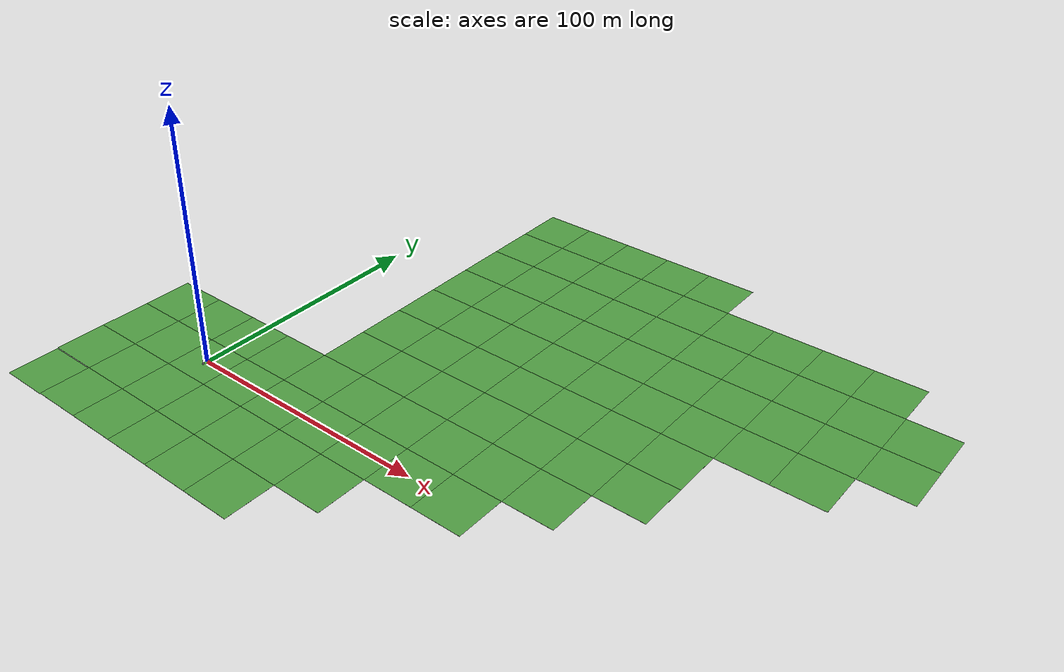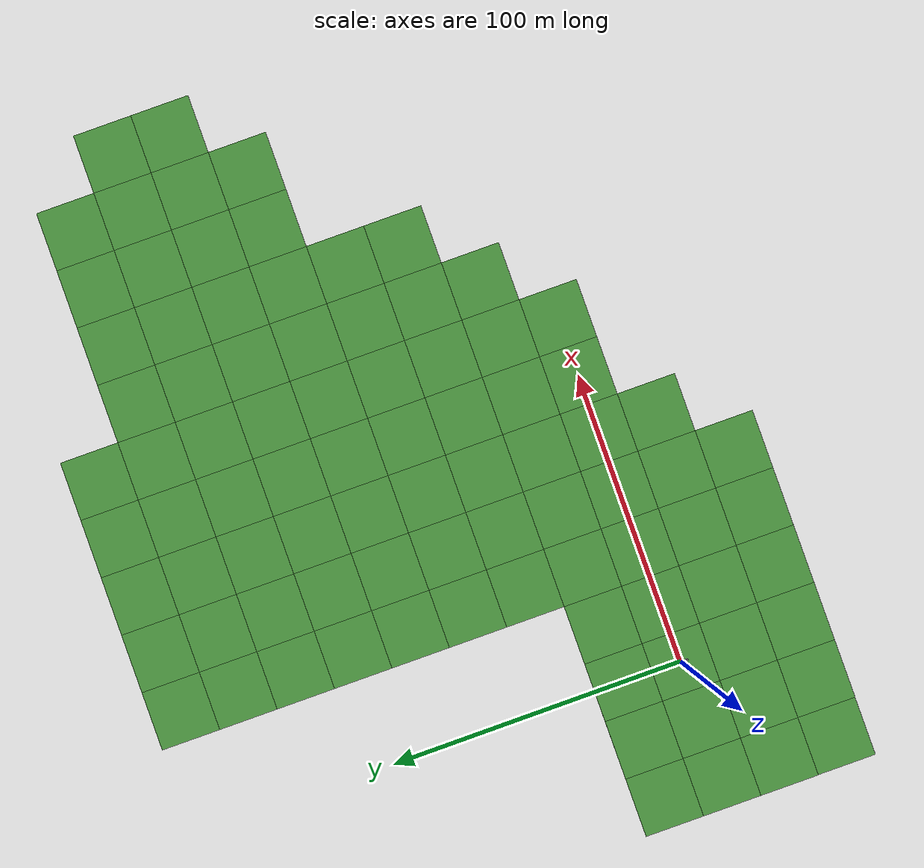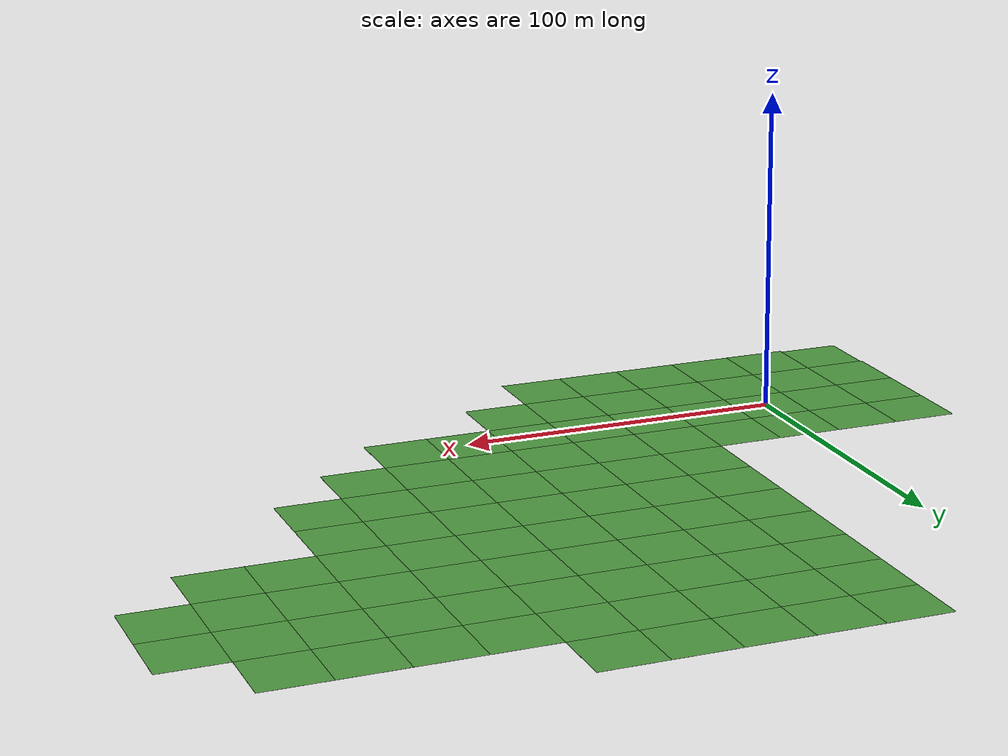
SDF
<sdf version="1.4">
  <world name="default">
      <include>
          <uri>model://construction_barrel</uri>
          <pose>0 -2 0 0 0 0</pose>
      </include>
      <include>
          <uri>model://grass_plane</uri>
          <pose>0 0 0 0 0 0</pose>
      </include>

  </world>
</sdf>

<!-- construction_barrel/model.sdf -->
<sdf version="1.5">
  <model name="Construction Barrel">
    <link name="link">
      <inertial>
        <pose>0 0 0.4 0 0 0</pose>
        <mass>500</mass>
        <inertia>
          <ixx>51.2096</ixx>
          <iyy>51.2096</iyy>
          <izz>25</izz>
          <ixy>0</ixy>
          <ixz>0</ixz>
        </inertia>
      </inertial>
      <collision name="collision">
        <geometry>
          <mesh>
            <uri>model://construction_barrel/meshes/construction_barrel.dae</uri>
          </mesh>
        </geometry>
      </collision>
      <visual name="visual">
        <geometry>
          <mesh>
            <uri>model://construction_barrel/meshes/construction_barrel.dae</uri>
          </mesh>
        </geometry>
      </visual>
    </link>
  </model>
</sdf>

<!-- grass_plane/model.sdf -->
<sdf version='1.4'>
  <model name='grass_plane'>
    <static>true</static>
    <link name='link'>
      <collision name='collision'>
        <geometry>
          <plane>
            <normal>0 0 1</normal>
            <size>500 500</size>
          </plane>
        </geometry>
        <surface>
          <friction>
            <ode>
              <mu>0.5</mu>
              <mu2>.5</mu2>
            </ode>
          </friction>
        </surface>
      </collision>

      <visual name='visual_0'>
        <pose>-40 -40 0 0 0 0</pose>

        <cast_shadows>false</cast_shadows>
        <geometry>
          <plane>
            <normal>0 0 1</normal>
            <size>20 20</size>
          </plane>
        </geometry>
        <material>
          <script>
            <uri>model://grass_plane/materials/scripts</uri>
            <uri>model://grass_plane/materials/textures</uri>
            <name>vrc/grass</name>
          </script>
        </material>
      </visual>

      <visual name='visual_1'>
        <pose>-20 -40 0 0 0 0</pose>

        <cast_shadows>false</cast_shadows>
        <geometry>
          <plane>
            <normal>0 0 1</normal>
            <size>20 20</size>
          </plane>
        </geometry>
        <material>
          <script>
            <uri>model://grass_plane/materials/scripts</uri>
            <uri>model://grass_plane/materials/textures</uri>
            <name>vrc/grass</name>
          </script>
        </material>
      </visual>

      <visual name='visual_2'>
        <pose>0 -40 0 0 0 0</pose>

        <cast_shadows>false</cast_shadows>
        <geometry>
          <plane>
            <normal>0 0 1</normal>
            <size>20 20</size>
          </plane>
        </geometry>
        <material>
          <script>
            <uri>model://grass_plane/materials/scripts</uri>
            <uri>model://grass_plane/materials/textures</uri>
            <name>vrc/grass</name>
          </script>
        </material>
      </visual>

      <visual name='visual_3'>
        <pose>20 -40 0 0 0 0</pose>

        <cast_shadows>false</cast_shadows>
        <geometry>
          <plane>
            <normal>0 0 1</normal>
            <size>20 20</size>
          </plane>
        </geometry>
        <material>
          <script>
            <uri>model://grass_plane/materials/scripts</uri>
            <uri>model://grass_plane/materials/textures</uri>
            <name>vrc/grass</name>
          </script>
        </material>
      </visual>

      <visual name='visual_4'>
        <pose>40 -40 0 0 0 0</pose>

        <cast_shadows>false</cast_shadows>
        <geometry>
          <plane>
            <normal>0 0 1</normal>
            <size>20 20</size>
          </plane>
        </geometry>
        <material>
          <script>
            <uri>model://grass_plane/materials/scripts</uri>
            <uri>model://grass_plane/materials/textures</uri>
            <name>vrc/grass</name>
          </script>
        </material>
      </visual>

      <visual name='visual_5'>
        <pose>60 -40 0 0 0 0</pose>

        <cast_shadows>false</cast_shadows>
        <geometry>
          <plane>
            <normal>0 0 1</normal>
            <size>20 20</size>
          </plane>
        </geometry>
        <material>
          <script>
            <uri>model://grass_plane/materials/scripts</uri>
            <uri>model://grass_plane/materials/textures</uri>
            <name>vrc/grass</name>
          </script>
        </material>
      </visual>

      <visual name='visual_6'>
        <pose>-40 -20 0 0 0 0</pose>

        <cast_shadows>false</cast_shadows>
        <geometry>
          <plane>
            <normal>0 0 1</normal>
            <size>20 20</size>
          </plane>
        </geometry>
        <material>
          <script>
            <uri>model://grass_plane/materials/scripts</uri>
            <uri>model://grass_plane/materials/textures</uri>
            <name>vrc/grass</name>
          </script>
        </material>
      </visual>

      <visual name='visual_7'>
        <pose>-20 -20 0 0 0 0</pose>

        <cast_shadows>false</cast_shadows>
        <geometry>
          <plane>
            <normal>0 0 1</normal>
            <size>20 20</size>
          </plane>
        </geometry>
        <material>
          <script>
            <uri>model://grass_plane/materials/scripts</uri>
            <uri>model://grass_plane/materials/textures</uri>
            <name>vrc/grass</name>
          </script>
        </material>
      </visual>

      <visual name='visual_8'>
        <pose>0 -20 0 0 0 0</pose>

        <cast_shadows>false</cast_shadows>
        <geometry>
          <plane>
            <normal>0 0 1</normal>
            <size>20 20</size>
          </plane>
        </geometry>
        <material>
          <script>
            <uri>model://grass_plane/materials/scripts</uri>
            <uri>model://grass_plane/materials/textures</uri>
            <name>vrc/grass</name>
          </script>
        </material>
      </visual>

      <visual name='visual_9'>
        <pose>20 -20 0 0 0 0</pose>

        <cast_shadows>false</cast_shadows>
        <geometry>
          <plane>
            <normal>0 0 1</normal>
            <size>20 20</size>
          </plane>
        </geometry>
        <material>
          <script>
            <uri>model://grass_plane/materials/scripts</uri>
            <uri>model://grass_plane/materials/textures</uri>
            <name>vrc/grass</name>
          </script>
        </material>
      </visual>

      <visual name='visual_10'>
        <pose>40 -20 0 0 0 0</pose>

        <cast_shadows>false</cast_shadows>
        <geometry>
          <plane>
            <normal>0 0 1</normal>
            <size>20 20</size>
          </plane>
        </geometry>
        <material>
          <script>
            <uri>model://grass_plane/materials/scripts</uri>
            <uri>model://grass_plane/materials/textures</uri>
            <name>vrc/grass</name>
          </script>
        </material>
      </visual>

      <visual name='visual_11'>
        <pose>60 -20 0 0 0 0</pose>

        <cast_shadows>false</cast_shadows>
        <geometry>
          <plane>
            <normal>0 0 1</normal>
            <size>20 20</size>
          </plane>
        </geometry>
        <material>
          <script>
            <uri>model://grass_plane/materials/scripts</uri>
            <uri>model://grass_plane/materials/textures</uri>
            <name>vrc/grass</name>
          </script>
        </material>
      </visual>

      <visual name='visual_12'>
        <pose>80 -20 0 0 0 0</pose>

        <cast_shadows>false</cast_shadows>
        <geometry>
          <plane>
            <normal>0 0 1</normal>
            <size>20 20</size>
          </plane>
        </geometry>
        <material>
          <script>
            <uri>model://grass_plane/materials/scripts</uri>
            <uri>model://grass_plane/materials/textures</uri>
            <name>vrc/grass</name>
          </script>
        </material>
      </visual>

      <visual name='visual_13'>
        <pose>-40 0 0 0 0 0</pose>

        <cast_shadows>false</cast_shadows>
        <geometry>
          <plane>
            <normal>0 0 1</normal>
            <size>20 20</size>
          </plane>
        </geometry>
        <material>
          <script>
            <uri>model://grass_plane/materials/scripts</uri>
            <uri>model://grass_plane/materials/textures</uri>
            <name>vrc/grass</name>
          </script>
        </material>
      </visual>

      <visual name='visual_14'>
        <pose>-20 0 0 0 0 0</pose>

        <cast_shadows>false</cast_shadows>
        <geometry>
          <plane>
            <normal>0 0 1</normal>
            <size>20 20</size>
          </plane>
        </geometry>
        <material>
          <script>
            <uri>model://grass_plane/materials/scripts</uri>
            <uri>model://grass_plane/materials/textures</uri>
            <name>vrc/grass</name>
          </script>
        </material>
      </visual>

      <visual name='visual_15'>
        <pose>0 0 0 0 0 0</pose>

        <cast_shadows>false</cast_shadows>
        <geometry>
          <plane>
            <normal>0 0 1</normal>
            <size>20 20</size>
          </plane>
        </geometry>
        <material>
          <script>
            <uri>model://grass_plane/materials/scripts</uri>
            <uri>model://grass_plane/materials/textures</uri>
            <name>vrc/grass</name>
          </script>
        </material>
      </visual>

      <visual name='visual_16'>
        <pose>20 0 0 0 0 0</pose>

        <cast_shadows>false</cast_shadows>
        <geometry>
          <plane>
            <normal>0 0 1</normal>
            <size>20 20</size>
          </plane>
        </geometry>
        <material>
          <script>
            <uri>model://grass_plane/materials/scripts</uri>
            <uri>model://grass_plane/materials/textures</uri>
            <name>vrc/grass</name>
          </script>
        </material>
      </visual>

      <visual name='visual_17'>
        <pose>40 0 0 0 0 0</pose>

        <cast_shadows>false</cast_shadows>
        <geometry>
          <plane>
            <normal>0 0 1</normal>
            <size>20 20</size>
          </plane>
        </geometry>
        <material>
          <script>
            <uri>model://grass_plane/materials/scripts</uri>
            <uri>model://grass_plane/materials/textures</uri>
            <name>vrc/grass</name>
          </script>
        </material>
      </visual>

      <visual name='visual_18'>
        <pose>60 0 0 0 0 0</pose>

        <cast_shadows>false</cast_shadows>
        <geometry>
          <plane>
            <normal>0 0 1</normal>
            <size>20 20</size>
          </plane>
        </geometry>
        <material>
          <script>
            <uri>model://grass_plane/materials/scripts</uri>
            <uri>model://grass_plane/materials/textures</uri>
            <name>vrc/grass</name>
          </script>
        </material>
      </visual>

      <visual name='visual_19'>
        <pose>80 0 0 0 0 0</pose>

        <cast_shadows>false</cast_shadows>
        <geometry>
          <plane>
            <normal>0 0 1</normal>
            <size>20 20</size>
          </plane>
        </geometry>
        <material>
          <script>
            <uri>model://grass_plane/materials/scripts</uri>
            <uri>model://grass_plane/materials/textures</uri>
            <name>vrc/grass</name>
          </script>
        </material>
      </visual>

      <visual name='visual_20'>
        <pose>100 0 0 0 0 0</pose>

        <cast_shadows>false</cast_shadows>
        <geometry>
          <plane>
            <normal>0 0 1</normal>
            <size>20 20</size>
          </plane>
        </geometry>
        <material>
          <script>
            <uri>model://grass_plane/materials/scripts</uri>
            <uri>model://grass_plane/materials/textures</uri>
            <name>vrc/grass</name>
          </script>
        </material>
      </visual>

      <visual name='visual_21'>
        <pose>120 0 0 0 0 0</pose>

        <cast_shadows>false</cast_shadows>
        <geometry>
          <plane>
            <normal>0 0 1</normal>
            <size>20 20</size>
          </plane>
        </geometry>
        <material>
          <script>
            <uri>model://grass_plane/materials/scripts</uri>
            <uri>model://grass_plane/materials/textures</uri>
            <name>vrc/grass</name>
          </script>
        </material>
      </visual>

      <visual name='visual_22'>
        <pose>-40 20 0 0 0 0</pose>

        <cast_shadows>false</cast_shadows>
        <geometry>
          <plane>
            <normal>0 0 1</normal>
            <size>20 20</size>
          </plane>
        </geometry>
        <material>
          <script>
            <uri>model://grass_plane/materials/scripts</uri>
            <uri>model://grass_plane/materials/textures</uri>
            <name>vrc/grass</name>
          </script>
        </material>
      </visual>

      <visual name='visual_23'>
        <pose>-20 20 0 0 0 0</pose>

        <cast_shadows>false</cast_shadows>
        <geometry>
          <plane>
            <normal>0 0 1</normal>
            <size>20 20</size>
          </plane>
        </geometry>
        <material>
          <script>
            <uri>model://grass_plane/materials/scripts</uri>
            <uri>model://grass_plane/materials/textures</uri>
            <name>vrc/grass</name>
          </script>
        </material>
      </visual>

      <visual name='visual_24'>
        <pose>0 20 0 0 0 0</pose>

        <cast_shadows>false</cast_shadows>
        <geometry>
          <plane>
            <normal>0 0 1</normal>
            <size>20 20</size>
          </plane>
        </geometry>
        <material>
          <script>
            <uri>model://grass_plane/materials/scripts</uri>
            <uri>model://grass_plane/materials/textures</uri>
            <name>vrc/grass</name>
          </script>
        </material>
      </visual>

      <visual name='visual_25'>
        <pose>20 20 0 0 0 0</pose>

        <cast_shadows>false</cast_shadows>
        <geometry>
          <plane>
            <normal>0 0 1</normal>
            <size>20 20</size>
          </plane>
        </geometry>
        <material>
          <script>
            <uri>model://grass_plane/materials/scripts</uri>
            <uri>model://grass_plane/materials/textures</uri>
            <name>vrc/grass</name>
          </script>
        </material>
      </visual>

      <visual name='visual_26'>
        <pose>40 20 0 0 0 0</pose>

        <cast_shadows>false</cast_shadows>
        <geometry>
          <plane>
            <normal>0 0 1</normal>
            <size>20 20</size>
          </plane>
        </geometry>
        <material>
          <script>
            <uri>model://grass_plane/materials/scripts</uri>
            <uri>model://grass_plane/materials/textures</uri>
            <name>vrc/grass</name>
          </script>
        </material>
      </visual>

      <visual name='visual_27'>
        <pose>60 20 0 0 0 0</pose>

        <cast_shadows>false</cast_shadows>
        <geometry>
          <plane>
            <normal>0 0 1</normal>
            <size>20 20</size>
          </plane>
        </geometry>
        <material>
          <script>
            <uri>model://grass_plane/materials/scripts</uri>
            <uri>model://grass_plane/materials/textures</uri>
            <name>vrc/grass</name>
          </script>
        </material>
      </visual>

      <visual name='visual_28'>
        <pose>80 20 0 0 0 0</pose>

        <cast_shadows>false</cast_shadows>
        <geometry>
          <plane>
            <normal>0 0 1</normal>
            <size>20 20</size>
          </plane>
        </geometry>
        <material>
          <script>
            <uri>model://grass_plane/materials/scripts</uri>
            <uri>model://grass_plane/materials/textures</uri>
            <name>vrc/grass</name>
          </script>
        </material>
      </visual>

      <visual name='visual_29'>
        <pose>100 20 0 0 0 0</pose>

        <cast_shadows>false</cast_shadows>
        <geometry>
          <plane>
            <normal>0 0 1</normal>
            <size>20 20</size>
          </plane>
        </geometry>
        <material>
          <script>
            <uri>model://grass_plane/materials/scripts</uri>
            <uri>model://grass_plane/materials/textures</uri>
            <name>vrc/grass</name>
          </script>
        </material>
      </visual>

      <visual name='visual_30'>
        <pose>120 20 0 0 0 0</pose>

        <cast_shadows>false</cast_shadows>
        <geometry>
          <plane>
            <normal>0 0 1</normal>
            <size>20 20</size>
          </plane>
        </geometry>
        <material>
          <script>
            <uri>model://grass_plane/materials/scripts</uri>
            <uri>model://grass_plane/materials/textures</uri>
            <name>vrc/grass</name>
          </script>
        </material>
      </visual>

      <visual name='visual_31'>
        <pose>140 20 0 0 0 0</pose>

        <cast_shadows>false</cast_shadows>
        <geometry>
          <plane>
            <normal>0 0 1</normal>
            <size>20 20</size>
          </plane>
        </geometry>
        <material>
          <script>
            <uri>model://grass_plane/materials/scripts</uri>
            <uri>model://grass_plane/materials/textures</uri>
            <name>vrc/grass</name>
          </script>
        </material>
      </visual>

      <visual name='visual_32'>
        <pose>40 40 0 0 0 0</pose>

        <cast_shadows>false</cast_shadows>
        <geometry>
          <plane>
            <normal>0 0 1</normal>
            <size>20 20</size>
          </plane>
        </geometry>
        <material>
          <script>
            <uri>model://grass_plane/materials/scripts</uri>
            <uri>model://grass_plane/materials/textures</uri>
            <name>vrc/grass</name>
          </script>
        </material>
      </visual>

      <visual name='visual_33'>
        <pose>60 40 0 0 0 0</pose>

        <cast_shadows>false</cast_shadows>
        <geometry>
          <plane>
            <normal>0 0 1</normal>
            <size>20 20</size>
          </plane>
        </geometry>
        <material>
          <script>
            <uri>model://grass_plane/materials/scripts</uri>
            <uri>model://grass_plane/materials/textures</uri>
            <name>vrc/grass</name>
          </script>
        </material>
      </visual>

      <visual name='visual_34'>
        <pose>80 40 0 0 0 0</pose>

        <cast_shadows>false</cast_shadows>
        <geometry>
          <plane>
            <normal>0 0 1</normal>
            <size>20 20</size>
          </plane>
        </geometry>
        <material>
          <script>
            <uri>model://grass_plane/materials/scripts</uri>
            <uri>model://grass_plane/materials/textures</uri>
            <name>vrc/grass</name>
          </script>
        </material>
      </visual>

      <visual name='visual_35'>
        <pose>100 40 0 0 0 0</pose>

        <cast_shadows>false</cast_shadows>
        <geometry>
          <plane>
            <normal>0 0 1</normal>
            <size>20 20</size>
          </plane>
        </geometry>
        <material>
          <script>
            <uri>model://grass_plane/materials/scripts</uri>
            <uri>model://grass_plane/materials/textures</uri>
            <name>vrc/grass</name>
          </script>
        </material>
      </visual>

      <visual name='visual_36'>
        <pose>120 40 0 0 0 0</pose>

        <cast_shadows>false</cast_shadows>
        <geometry>
          <plane>
            <normal>0 0 1</normal>
            <size>20 20</size>
          </plane>
        </geometry>
        <material>
          <script>
            <uri>model://grass_plane/materials/scripts</uri>
            <uri>model://grass_plane/materials/textures</uri>
            <name>vrc/grass</name>
          </script>
        </material>
      </visual>

      <visual name='visual_37'>
        <pose>140 40 0 0 0 0</pose>

        <cast_shadows>false</cast_shadows>
        <geometry>
          <plane>
            <normal>0 0 1</normal>
            <size>20 20</size>
          </plane>
        </geometry>
        <material>
          <script>
            <uri>model://grass_plane/materials/scripts</uri>
            <uri>model://grass_plane/materials/textures</uri>
            <name>vrc/grass</name>
          </script>
        </material>
      </visual>

      <visual name='visual_38'>
        <pose>160 40 0 0 0 0</pose>

        <cast_shadows>false</cast_shadows>
        <geometry>
          <plane>
            <normal>0 0 1</normal>
            <size>20 20</size>
          </plane>
        </geometry>
        <material>
          <script>
            <uri>model://grass_plane/materials/scripts</uri>
            <uri>model://grass_plane/materials/textures</uri>
            <name>vrc/grass</name>
          </script>
        </material>
      </visual>

      <visual name='visual_39'>
        <pose>40 60 0 0 0 0</pose>

        <cast_shadows>false</cast_shadows>
        <geometry>
          <plane>
            <normal>0 0 1</normal>
            <size>20 20</size>
          </plane>
        </geometry>
        <material>
          <script>
            <uri>model://grass_plane/materials/scripts</uri>
            <uri>model://grass_plane/materials/textures</uri>
            <name>vrc/grass</name>
          </script>
        </material>
      </visual>

      <visual name='visual_40'>
        <pose>60 60 0 0 0 0</pose>

        <cast_shadows>false</cast_shadows>
        <geometry>
          <plane>
            <normal>0 0 1</normal>
            <size>20 20</size>
          </plane>
        </geometry>
        <material>
          <script>
            <uri>model://grass_plane/materials/scripts</uri>
            <uri>model://grass_plane/materials/textures</uri>
            <name>vrc/grass</name>
          </script>
        </material>
      </visual>

      <visual name='visual_41'>
        <pose>80 60 0 0 0 0</pose>

        <cast_shadows>false</cast_shadows>
        <geometry>
          <plane>
            <normal>0 0 1</normal>
            <size>20 20</size>
          </plane>
        </geometry>
        <material>
          <script>
            <uri>model://grass_plane/materials/scripts</uri>
            <uri>model://grass_plane/materials/textures</uri>
            <name>vrc/grass</name>
          </script>
        </material>
      </visual>

      <visual name='visual_42'>
        <pose>100 60 0 0 0 0</pose>

        <cast_shadows>false</cast_shadows>
        <geometry>
          <plane>
            <normal>0 0 1</normal>
            <size>20 20</size>
          </plane>
        </geometry>
        <material>
          <script>
            <uri>model://grass_plane/materials/scripts</uri>
            <uri>model://grass_plane/materials/textures</uri>
            <name>vrc/grass</name>
          </script>
        </material>
      </visual>

      <visual name='visual_43'>
        <pose>120 60 0 0 0 0</pose>

        <cast_shadows>false</cast_shadows>
        <geometry>
          <plane>
            <normal>0 0 1</normal>
            <size>20 20</size>
          </plane>
        </geometry>
        <material>
          <script>
            <uri>model://grass_plane/materials/scripts</uri>
            <uri>model://grass_plane/materials/textures</uri>
            <name>vrc/grass</name>
          </script>
        </material>
      </visual>

      <visual name='visual_44'>
        <pose>140 60 0 0 0 0</pose>

        <cast_shadows>false</cast_shadows>
        <geometry>
          <plane>
            <normal>0 0 1</normal>
            <size>20 20</size>
          </plane>
        </geometry>
        <material>
          <script>
            <uri>model://grass_plane/materials/scripts</uri>
            <uri>model://grass_plane/materials/textures</uri>
            <name>vrc/grass</name>
          </script>
        </material>
      </visual>

      <visual name='visual_45'>
        <pose>160 60 0 0 0 0</pose>

        <cast_shadows>false</cast_shadows>
        <geometry>
          <plane>
            <normal>0 0 1</normal>
            <size>20 20</size>
          </plane>
        </geometry>
        <material>
          <script>
            <uri>model://grass_plane/materials/scripts</uri>
            <uri>model://grass_plane/materials/textures</uri>
            <name>vrc/grass</name>
          </script>
        </material>
      </visual>

      <visual name='visual_46'>
        <pose>40 80 0 0 0 0</pose>

        <cast_shadows>false</cast_shadows>
        <geometry>
          <plane>
            <normal>0 0 1</normal>
            <size>20 20</size>
          </plane>
        </geometry>
        <material>
          <script>
            <uri>model://grass_plane/materials/scripts</uri>
            <uri>model://grass_plane/materials/textures</uri>
            <name>vrc/grass</name>
          </script>
        </material>
      </visual>

      <visual name='visual_47'>
        <pose>60 80 0 0 0 0</pose>

        <cast_shadows>false</cast_shadows>
        <geometry>
          <plane>
            <normal>0 0 1</normal>
            <size>20 20</size>
          </plane>
        </geometry>
        <material>
          <script>
            <uri>model://grass_plane/materials/scripts</uri>
            <uri>model://grass_plane/materials/textures</uri>
            <name>vrc/grass</name>
          </script>
        </material>
      </visual>

      <visual name='visual_48'>
        <pose>80 80 0 0 0 0</pose>

        <cast_shadows>false</cast_shadows>
        <geometry>
          <plane>
            <normal>0 0 1</normal>
            <size>20 20</size>
          </plane>
        </geometry>
        <material>
          <script>
            <uri>model://grass_plane/materials/scripts</uri>
            <uri>model://grass_plane/materials/textures</uri>
            <name>vrc/grass</name>
          </script>
        </material>
      </visual>

      <visual name='visual_49'>
        <pose>100 80 0 0 0 0</pose>

        <cast_shadows>false</cast_shadows>
        <geometry>
          <plane>
            <normal>0 0 1</normal>
            <size>20 20</size>
          </plane>
        </geometry>
        <material>
          <script>
            <uri>model://grass_plane/materials/scripts</uri>
            <uri>model://grass_plane/materials/textures</uri>
            <name>vrc/grass</name>
          </script>
        </material>
      </visual>

      <visual name='visual_50'>
        <pose>120 80 0 0 0 0</pose>

        <cast_shadows>false</cast_shadows>
        <geometry>
          <plane>
            <normal>0 0 1</normal>
            <size>20 20</size>
          </plane>
        </geometry>
        <material>
          <script>
            <uri>model://grass_plane/materials/scripts</uri>
            <uri>model://grass_plane/materials/textures</uri>
            <name>vrc/grass</name>
          </script>
        </material>
      </visual>

      <visual name='visual_51'>
        <pose>140 80 0 0 0 0</pose>

        <cast_shadows>false</cast_shadows>
        <geometry>
          <plane>
            <normal>0 0 1</normal>
            <size>20 20</size>
          </plane>
        </geometry>
        <material>
          <script>
            <uri>model://grass_plane/materials/scripts</uri>
            <uri>model://grass_plane/materials/textures</uri>
            <name>vrc/grass</name>
          </script>
        </material>
      </visual>

      <visual name='visual_52'>
        <pose>160 80 0 0 0 0</pose>

        <cast_shadows>false</cast_shadows>
        <geometry>
          <plane>
            <normal>0 0 1</normal>
            <size>20 20</size>
          </plane>
        </geometry>
        <material>
          <script>
            <uri>model://grass_plane/materials/scripts</uri>
            <uri>model://grass_plane/materials/textures</uri>
            <name>vrc/grass</name>
          </script>
        </material>
      </visual>

      <visual name='visual_53'>
        <pose>180 80 0 0 0 0</pose>

        <cast_shadows>false</cast_shadows>
        <geometry>
          <plane>
            <normal>0 0 1</normal>
            <size>20 20</size>
          </plane>
        </geometry>
        <material>
          <script>
            <uri>model://grass_plane/materials/scripts</uri>
            <uri>model://grass_plane/materials/textures</uri>
            <name>vrc/grass</name>
          </script>
        </material>
      </visual>

      <visual name='visual_54'>
        <pose>200 80 0 0 0 0</pose>

        <cast_shadows>false</cast_shadows>
        <geometry>
          <plane>
            <normal>0 0 1</normal>
            <size>20 20</size>
          </plane>
        </geometry>
        <material>
          <script>
            <uri>model://grass_plane/materials/scripts</uri>
            <uri>model://grass_plane/materials/textures</uri>
            <name>vrc/grass</name>
          </script>
        </material>
      </visual>

      <visual name='visual_55'>
        <pose>40 100 0 0 0 0</pose>

        <cast_shadows>false</cast_shadows>
        <geometry>
          <plane>
            <normal>0 0 1</normal>
            <size>20 20</size>
          </plane>
        </geometry>
        <material>
          <script>
            <uri>model://grass_plane/materials/scripts</uri>
            <uri>model://grass_plane/materials/textures</uri>
            <name>vrc/grass</name>
          </script>
        </material>
      </visual>

      <visual name='visual_56'>
        <pose>60 100 0 0 0 0</pose>

        <cast_shadows>false</cast_shadows>
        <geometry>
          <plane>
            <normal>0 0 1</normal>
            <size>20 20</size>
          </plane>
        </geometry>
        <material>
          <script>
            <uri>model://grass_plane/materials/scripts</uri>
            <uri>model://grass_plane/materials/textures</uri>
            <name>vrc/grass</name>
          </script>
        </material>
      </visual>

      <visual name='visual_57'>
        <pose>80 100 0 0 0 0</pose>

        <cast_shadows>false</cast_shadows>
        <geometry>
          <plane>
            <normal>0 0 1</normal>
            <size>20 20</size>
          </plane>
        </geometry>
        <material>
          <script>
            <uri>model://grass_plane/materials/scripts</uri>
            <uri>model://grass_plane/materials/textures</uri>
            <name>vrc/grass</name>
          </script>
        </material>
      </visual>

      <visual name='visual_58'>
        <pose>100 100 0 0 0 0</pose>

        <cast_shadows>false</cast_shadows>
        <geometry>
          <plane>
            <normal>0 0 1</normal>
            <size>20 20</size>
          </plane>
        </geometry>
        <material>
          <script>
            <uri>model://grass_plane/materials/scripts</uri>
            <uri>model://grass_plane/materials/textures</uri>
            <name>vrc/grass</name>
          </script>
        </material>
      </visual>

      <visual name='visual_59'>
        <pose>120 100 0 0 0 0</pose>

        <cast_shadows>false</cast_shadows>
        <geometry>
          <plane>
            <normal>0 0 1</normal>
            <size>20 20</size>
          </plane>
        </geometry>
        <material>
          <script>
            <uri>model://grass_plane/materials/scripts</uri>
            <uri>model://grass_plane/materials/textures</uri>
            <name>vrc/grass</name>
          </script>
        </material>
      </visual>

      <visual name='visual_60'>
        <pose>140 100 0 0 0 0</pose>

        <cast_shadows>false</cast_shadows>
        <geometry>
          <plane>
            <normal>0 0 1</normal>
            <size>20 20</size>
          </plane>
        </geometry>
        <material>
          <script>
            <uri>model://grass_plane/materials/scripts</uri>
            <uri>model://grass_plane/materials/textures</uri>
            <name>vrc/grass</name>
          </script>
        </material>
      </visual>

      <visual name='visual_61'>
        <pose>160 100 0 0 0 0</pose>

        <cast_shadows>false</cast_shadows>
        <geometry>
          <plane>
            <normal>0 0 1</normal>
            <size>20 20</size>
          </plane>
        </geometry>
        <material>
          <script>
            <uri>model://grass_plane/materials/scripts</uri>
            <uri>model://grass_plane/materials/textures</uri>
            <name>vrc/grass</name>
          </script>
        </material>
      </visual>

      <visual name='visual_62'>
        <pose>180 100 0 0 0 0</pose>

        <cast_shadows>false</cast_shadows>
        <geometry>
          <plane>
            <normal>0 0 1</normal>
            <size>20 20</size>
          </plane>
        </geometry>
        <material>
          <script>
            <uri>model://grass_plane/materials/scripts</uri>
            <uri>model://grass_plane/materials/textures</uri>
            <name>vrc/grass</name>
          </script>
        </material>
      </visual>

      <visual name='visual_63'>
        <pose>200 100 0 0 0 0</pose>

        <cast_shadows>false</cast_shadows>
        <geometry>
          <plane>
            <normal>0 0 1</normal>
            <size>20 20</size>
          </plane>
        </geometry>
        <material>
          <script>
            <uri>model://grass_plane/materials/scripts</uri>
            <uri>model://grass_plane/materials/textures</uri>
            <name>vrc/grass</name>
          </script>
        </material>
      </visual>

      <visual name='visual_63a'>
        <pose>220 100 0 0 0 0</pose>

        <cast_shadows>false</cast_shadows>
        <geometry>
          <plane>
            <normal>0 0 1</normal>
            <size>20 20</size>
          </plane>
        </geometry>
        <material>
          <script>
            <uri>model://grass_plane/materials/scripts</uri>
            <uri>model://grass_plane/materials/textures</uri>
            <name>vrc/grass</name>
          </script>
        </material>
      </visual>

      <visual name='visual_64'>
        <pose>40 120 0 0 0 0</pose>

        <cast_shadows>false</cast_shadows>
        <geometry>
          <plane>
            <normal>0 0 1</normal>
            <size>20 20</size>
          </plane>
        </geometry>
        <material>
          <script>
            <uri>model://grass_plane/materials/scripts</uri>
            <uri>model://grass_plane/materials/textures</uri>
            <name>vrc/grass</name>
          </script>
        </material>
      </visual>

      <visual name='visual_65'>
        <pose>60 120 0 0 0 0</pose>

        <cast_shadows>false</cast_shadows>
        <geometry>
          <plane>
            <normal>0 0 1</normal>
            <size>20 20</size>
          </plane>
        </geometry>
        <material>
          <script>
            <uri>model://grass_plane/materials/scripts</uri>
            <uri>model://grass_plane/materials/textures</uri>
            <name>vrc/grass</name>
          </script>
        </material>
      </visual>

      <visual name='visual_66'>
        <pose>80 120 0 0 0 0</pose>

        <cast_shadows>false</cast_shadows>
        <geometry>
          <plane>
            <normal>0 0 1</normal>
            <size>20 20</size>
          </plane>
        </geometry>
        <material>
          <script>
            <uri>model://grass_plane/materials/scripts</uri>
            <uri>model://grass_plane/materials/textures</uri>
            <name>vrc/grass</name>
          </script>
        </material>
      </visual>

      <visual name='visual_67'>
        <pose>100 120 0 0 0 0</pose>

        <cast_shadows>false</cast_shadows>
        <geometry>
          <plane>
            <normal>0 0 1</normal>
            <size>20 20</size>
          </plane>
        </geometry>
        <material>
          <script>
            <uri>model://grass_plane/materials/scripts</uri>
            <uri>model://grass_plane/materials/textures</uri>
            <name>vrc/grass</name>
          </script>
        </material>
      </visual>

      <visual name='visual_68'>
        <pose>120 120 0 0 0 0</pose>

        <cast_shadows>false</cast_shadows>
        <geometry>
          <plane>
            <normal>0 0 1</normal>
            <size>20 20</size>
          </plane>
        </geometry>
        <material>
          <script>
            <uri>model://grass_plane/materials/scripts</uri>
            <uri>model://grass_plane/materials/textures</uri>
            <name>vrc/grass</name>
          </script>
        </material>
      </visual>

      <visual name='visual_69'>
        <pose>140 120 0 0 0 0</pose>

        <cast_shadows>false</cast_shadows>
        <geometry>
          <plane>
            <normal>0 0 1</normal>
            <size>20 20</size>
          </plane>
        </geometry>
        <material>
          <script>
            <uri>model://grass_plane/materials/scripts</uri>
            <uri>model://grass_plane/materials/textures</uri>
            <name>vrc/grass</name>
          </script>
        </material>
      </visual>

      <visual name='visual_70'>
        <pose>160 120 0 0 0 0</pose>

        <cast_shadows>false</cast_shadows>
        <geometry>
          <plane>
            <normal>0 0 1</normal>
            <size>20 20</size>
          </plane>
        </geometry>
        <material>
          <script>
            <uri>model://grass_plane/materials/scripts</uri>
            <uri>model://grass_plane/materials/textures</uri>
            <name>vrc/grass</name>
          </script>
        </material>
      </visual>

      <visual name='visual_71'>
        <pose>180 120 0 0 0 0</pose>

        <cast_shadows>false</cast_shadows>
        <geometry>
          <plane>
            <normal>0 0 1</normal>
            <size>20 20</size>
          </plane>
        </geometry>
        <material>
          <script>
            <uri>model://grass_plane/materials/scripts</uri>
            <uri>model://grass_plane/materials/textures</uri>
            <name>vrc/grass</name>
          </script>
        </material>
      </visual>

      <visual name='visual_72'>
        <pose>200 120 0 0 0 0</pose>

        <cast_shadows>false</cast_shadows>
        <geometry>
          <plane>
            <normal>0 0 1</normal>
            <size>20 20</size>
          </plane>
        </geometry>
        <material>
          <script>
            <uri>model://grass_plane/materials/scripts</uri>
            <uri>model://grass_plane/materials/textures</uri>
            <name>vrc/grass</name>
          </script>
        </material>
      </visual>

      <visual name='visual_72a'>
        <pose>220 120 0 0 0 0</pose>

        <cast_shadows>false</cast_shadows>
        <geometry>
          <plane>
            <normal>0 0 1</normal>
            <size>20 20</size>
          </plane>
        </geometry>
        <material>
          <script>
            <uri>model://grass_plane/materials/scripts</uri>
            <uri>model://grass_plane/materials/textures</uri>
            <name>vrc/grass</name>
          </script>
        </material>
      </visual>

      <visual name='visual_73'>
        <pose>40 140 0 0 0 0</pose>

        <cast_shadows>false</cast_shadows>
        <geometry>
          <plane>
            <normal>0 0 1</normal>
            <size>20 20</size>
          </plane>
        </geometry>
        <material>
          <script>
            <uri>model://grass_plane/materials/scripts</uri>
            <uri>model://grass_plane/materials/textures</uri>
            <name>vrc/grass</name>
          </script>
        </material>
      </visual>

      <visual name='visual_74'>
        <pose>60 140 0 0 0 0</pose>

        <cast_shadows>false</cast_shadows>
        <geometry>
          <plane>
            <normal>0 0 1</normal>
            <size>20 20</size>
          </plane>
        </geometry>
        <material>
          <script>
            <uri>model://grass_plane/materials/scripts</uri>
            <uri>model://grass_plane/materials/textures</uri>
            <name>vrc/grass</name>
          </script>
        </material>
      </visual>

      <visual name='visual_75'>
        <pose>80 140 0 0 0 0</pose>

        <cast_shadows>false</cast_shadows>
        <geometry>
          <plane>
            <normal>0 0 1</normal>
            <size>20 20</size>
          </plane>
        </geometry>
        <material>
          <script>
            <uri>model://grass_plane/materials/scripts</uri>
            <uri>model://grass_plane/materials/textures</uri>
            <name>vrc/grass</name>
          </script>
        </material>
      </visual>

      <visual name='visual_76'>
        <pose>100 140 0 0 0 0</pose>

        <cast_shadows>false</cast_shadows>
        <geometry>
          <plane>
            <normal>0 0 1</normal>
            <size>20 20</size>
          </plane>
        </geometry>
        <material>
          <script>
            <uri>model://grass_plane/materials/scripts</uri>
            <uri>model://grass_plane/materials/textures</uri>
            <name>vrc/grass</name>
          </script>
        </material>
      </visual>

      <visual name='visual_77'>
        <pose>120 140 0 0 0 0</pose>

        <cast_shadows>false</cast_shadows>
        <geometry>
          <plane>
            <normal>0 0 1</normal>
            <size>20 20</size>
          </plane>
        </geometry>
        <material>
          <script>
            <uri>model://grass_plane/materials/scripts</uri>
            <uri>model://grass_plane/materials/textures</uri>
            <name>vrc/grass</name>
          </script>
        </material>
      </visual>

      <visual name='visual_78'>
        <pose>140 140 0 0 0 0</pose>

        <cast_shadows>false</cast_shadows>
        <geometry>
          <plane>
            <normal>0 0 1</normal>
            <size>20 20</size>
          </plane>
        </geometry>
        <material>
          <script>
            <uri>model://grass_plane/materials/scripts</uri>
            <uri>model://grass_plane/materials/textures</uri>
            <name>vrc/grass</name>
          </script>
        </material>
      </visual>

      <visual name='visual_79'>
        <pose>160 140 0 0 0 0</pose>

        <cast_shadows>false</cast_shadows>
        <geometry>
          <plane>
            <normal>0 0 1</normal>
            <size>20 20</size>
          </plane>
        </geometry>
        <material>
          <script>
            <uri>model://grass_plane/materials/scripts</uri>
            <uri>model://grass_plane/materials/textures</uri>
            <name>vrc/grass</name>
          </script>
        </material>
      </visual>

      <visual name='visual_80'>
        <pose>180 140 0 0 0 0</pose>

        <cast_shadows>false</cast_shadows>
        <geometry>
          <plane>
            <normal>0 0 1</normal>
            <size>20 20</size>
          </plane>
        </geometry>
        <material>
          <script>
            <uri>model://grass_plane/materials/scripts</uri>
            <uri>model://grass_plane/materials/textures</uri>
            <name>vrc/grass</name>
          </script>
        </material>
      </visual>

      <visual name='visual_81'>
        <pose>200 140 0 0 0 0</pose>

        <cast_shadows>false</cast_shadows>
        <geometry>
          <plane>
            <normal>0 0 1</normal>
            <size>20 20</size>
          </plane>
        </geometry>
        <material>
          <script>
            <uri>model://grass_plane/materials/scripts</uri>
            <uri>model://grass_plane/materials/textures</uri>
            <name>vrc/grass</name>
          </script>
        </material>
      </visual>

      <visual name='visual_82'>
        <pose>40 160 0 0 0 0</pose>

        <cast_shadows>false</cast_shadows>
        <geometry>
          <plane>
            <normal>0 0 1</normal>
            <size>20 20</size>
          </plane>
        </geometry>
        <material>
          <script>
            <uri>model://grass_plane/materials/scripts</uri>
            <uri>model://grass_plane/materials/textures</uri>
            <name>vrc/grass</name>
          </script>
        </material>
      </visual>

      <visual name='visual_83'>
        <pose>60 160 0 0 0 0</pose>

        <cast_shadows>false</cast_shadows>
        <geometry>
          <plane>
            <normal>0 0 1</normal>
            <size>20 20</size>
          </plane>
        </geometry>
        <material>
          <script>
            <uri>model://grass_plane/materials/scripts</uri>
            <uri>model://grass_plane/materials/textures</uri>
            <name>vrc/grass</name>
          </script>
        </material>
      </visual>

      <visual name='visual_84'>
        <pose>80 160 0 0 0 0</pose>

        <cast_shadows>false</cast_shadows>
        <geometry>
          <plane>
            <normal>0 0 1</normal>
            <size>20 20</size>
          </plane>
        </geometry>
        <material>
          <script>
            <uri>model://grass_plane/materials/scripts</uri>
            <uri>model://grass_plane/materials/textures</uri>
            <name>vrc/grass</name>
          </script>
        </material>
      </visual>

      <visual name='visual_85'>
        <pose>100 160 0 0 0 0</pose>

        <cast_shadows>false</cast_shadows>
        <geometry>
          <plane>
            <normal>0 0 1</normal>
            <size>20 20</size>
          </plane>
        </geometry>
        <material>
          <script>
            <uri>model://grass_plane/materials/scripts</uri>
            <uri>model://grass_plane/materials/textures</uri>
            <name>vrc/grass</name>
          </script>
        </material>
      </visual>

      <visual name='visual_86'>
        <pose>120 160 0 0 0 0</pose>

        <cast_shadows>false</cast_shadows>
        <geometry>
          <plane>
            <normal>0 0 1</normal>
            <size>20 20</size>
          </plane>
        </geometry>
        <material>
          <script>
            <uri>model://grass_plane/materials/scripts</uri>
            <uri>model://grass_plane/materials/textures</uri>
            <name>vrc/grass</name>
          </script>
        </material>
      </visual>
    </link>
  </model>
</sdf>
